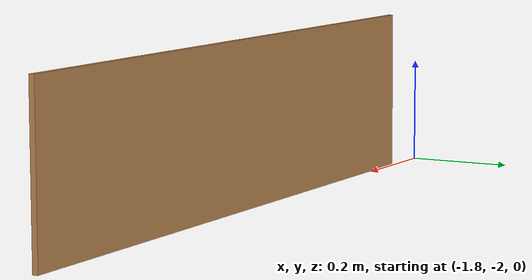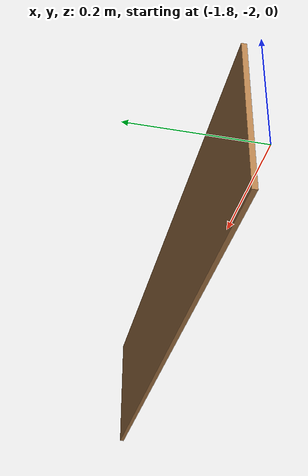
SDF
<?xml version='1.0'?>
<sdf version='1.7'>
  <model name='Fusta12'>
    <pose>-0.8525 -1.0075 0 0 -0 0</pose>
    <link name='Wall_0'>
      <collision name='Wall_0_Collision'>
        <geometry>
          <box>
            <size>1.2 0.01 0.3</size>
          </box>
        </geometry>
        <pose>0 0 0.15 0 -0 0</pose>
      </collision>
      <visual name='Wall_0_Visual'>
        <pose>0 0 0.15 0 -0 0</pose>
        <geometry>
          <box>
            <size>1.2 0.01 0.3</size>
          </box>
        </geometry>
        <material>
          <script>
            <uri>file://media/materials/scripts/gazebo.material</uri>
            <name>Gazebo/Wood</name>
          </script>
          <ambient>1 1 1 1</ambient>
        </material>
        <meta>
          <layer>0</layer>
        </meta>
      </visual>
      <pose>-0.2525 -1.0025 0 0 -0 0</pose>
    </link>
    <static>1</static>
  </model>
</sdf>
